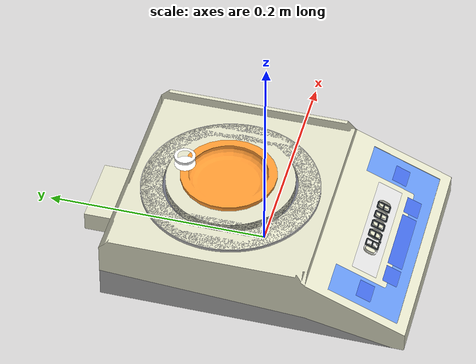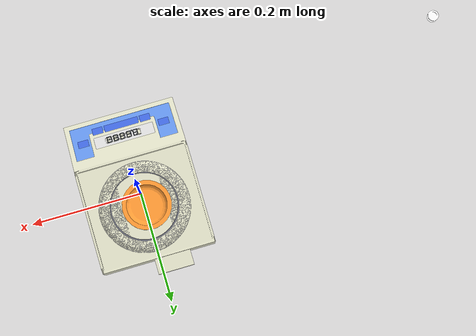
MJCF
<?xml version="1.0" encoding="utf-8"?>
<!-- Generated by scripts/generate_open_balance.py; do not edit by hand. -->
<mujoco model="balance_open">
  <asset>
    <mesh name="part_00" file="part_00.obj" inertia="shell"/>
    <mesh name="part_01" file="part_01.obj" inertia="shell"/>
    <mesh name="part_02" file="part_02.obj" inertia="shell"/>
    <mesh name="part_03" file="part_03.obj" inertia="shell"/>
    <mesh name="part_06" file="part_06.obj" inertia="shell"/>
    <mesh name="part_07" file="part_07.obj" inertia="shell"/>
    <mesh name="part_08" file="part_08.obj" inertia="shell"/>
    <mesh name="part_09" file="part_09.obj" inertia="shell"/>
    <mesh name="part_10" file="part_10.obj" inertia="shell"/>
  </asset>
  <worldbody>
    <body name="balance">
      <geom type="mesh" mesh="part_00" rgba="0.420 0.431 0.482 1" contype="0" conaffinity="0" density="0" group="1"/>
      <geom type="mesh" mesh="part_01" rgba="0.863 0.863 0.863 1" contype="0" conaffinity="0" density="0" group="1"/>
      <geom type="mesh" mesh="part_02" rgba="0.392 0.584 0.929 1" contype="0" conaffinity="0" density="0" group="1"/>
      <geom type="mesh" mesh="part_03" rgba="0.255 0.412 0.882 1" contype="0" conaffinity="0" density="0" group="1"/>
      <geom type="mesh" mesh="part_06" rgba="0.667 0.667 0.667 1" contype="0" conaffinity="0" density="0" group="1"/>
      <geom type="mesh" mesh="part_07" rgba="1.000 0.600 0.196 1" contype="0" conaffinity="0" density="0" group="1"/>
      <geom type="mesh" mesh="part_08" rgba="0.882 0.882 0.784 1" contype="0" conaffinity="0" density="0" group="1"/>
      <geom type="mesh" mesh="part_09" rgba="1.000 1.000 1.000 1" contype="0" conaffinity="0" density="0" group="1"/>
      <geom type="mesh" mesh="part_10" rgba="0.757 0.757 0.757 1" contype="0" conaffinity="0" density="0" group="1"/>
      <geom name="housing" type="box" pos="0 0 0.0290"
            size="0.1050 0.1497 0.0290" mass="6" group="3"
            rgba="0 0 0 0"/>
      <geom name="pan" type="box" pos="-0.0050 0.0310 0.0720"
            size="0.0430 0.0430 0.0050" mass="0.05" group="3"
            rgba="0.75 0.76 0.78 1"/>
      <geom name="shield_left" type="box" pos="-0.1000 0.0280 0.0765"
            size="0.0030 0.0870 0.0185" rgba="0 0 0 0" mass="0" group="3"/>
      <geom name="shield_right" type="box" pos="0.1000 0.0280 0.0765"
            size="0.0030 0.0870 0.0185" rgba="0 0 0 0" mass="0" group="3"/>
      <geom name="shield_back" type="box" pos="0.0000 0.1150 0.0765"
            size="0.1000 0.0030 0.0185" rgba="0 0 0 0" mass="0" group="3"/>
      <geom name="shield_front" type="box" pos="0.0000 -0.0590 0.0765"
            size="0.1000 0.0030 0.0185" rgba="0 0 0 0" mass="0" group="3"/>
      <geom name="seg_0_a" type="box" pos="-0.02143 -0.09731 0.04120"
            size="0.00360 0.00065 0.0004" xyaxes="1.0000 0.0032 0.0014 -0.0035 0.9195 0.3931"
            rgba="0.09 0.11 0.13 1" contype="0" conaffinity="0" group="1"/>
      <geom name="seg_0_g" type="box" pos="-0.02141 -0.10265 0.03892"
            size="0.00360 0.00065 0.0004" xyaxes="1.0000 0.0032 0.0014 -0.0035 0.9195 0.3931"
            rgba="0.09 0.11 0.13 1" contype="0" conaffinity="0" group="1"/>
      <geom name="seg_0_d" type="box" pos="-0.02139 -0.10798 0.03664"
            size="0.00360 0.00065 0.0004" xyaxes="1.0000 0.0032 0.0014 -0.0035 0.9195 0.3931"
            rgba="0.09 0.11 0.13 1" contype="0" conaffinity="0" group="1"/>
      <geom name="seg_0_f" type="box" pos="-0.02502 -0.09999 0.04005"
            size="0.00065 0.00290 0.0004" xyaxes="1.0000 0.0032 0.0014 -0.0035 0.9195 0.3931"
            rgba="0.09 0.11 0.13 1" contype="0" conaffinity="0" group="1"/>
      <geom name="seg_0_b" type="box" pos="-0.01782 -0.09997 0.04006"
            size="0.00065 0.00290 0.0004" xyaxes="1.0000 0.0032 0.0014 -0.0035 0.9195 0.3931"
            rgba="0.09 0.11 0.13 1" contype="0" conaffinity="0" group="1"/>
      <geom name="seg_0_e" type="box" pos="-0.02500 -0.10532 0.03777"
            size="0.00065 0.00290 0.0004" xyaxes="1.0000 0.0032 0.0014 -0.0035 0.9195 0.3931"
            rgba="0.09 0.11 0.13 1" contype="0" conaffinity="0" group="1"/>
      <geom name="seg_0_c" type="box" pos="-0.01780 -0.10530 0.03778"
            size="0.00065 0.00290 0.0004" xyaxes="1.0000 0.0032 0.0014 -0.0035 0.9195 0.3931"
            rgba="0.09 0.11 0.13 1" contype="0" conaffinity="0" group="1"/>
      <geom name="seg_1_a" type="box" pos="-0.00963 -0.09727 0.04121"
            size="0.00360 0.00065 0.0004" xyaxes="1.0000 0.0032 0.0014 -0.0035 0.9195 0.3931"
            rgba="0.09 0.11 0.13 1" contype="0" conaffinity="0" group="1"/>
      <geom name="seg_1_g" type="box" pos="-0.00961 -0.10261 0.03893"
            size="0.00360 0.00065 0.0004" xyaxes="1.0000 0.0032 0.0014 -0.0035 0.9195 0.3931"
            rgba="0.09 0.11 0.13 1" contype="0" conaffinity="0" group="1"/>
      <geom name="seg_1_d" type="box" pos="-0.00959 -0.10794 0.03665"
            size="0.00360 0.00065 0.0004" xyaxes="1.0000 0.0032 0.0014 -0.0035 0.9195 0.3931"
            rgba="0.09 0.11 0.13 1" contype="0" conaffinity="0" group="1"/>
      <geom name="seg_1_f" type="box" pos="-0.01322 -0.09995 0.04007"
            size="0.00065 0.00290 0.0004" xyaxes="1.0000 0.0032 0.0014 -0.0035 0.9195 0.3931"
            rgba="0.09 0.11 0.13 1" contype="0" conaffinity="0" group="1"/>
      <geom name="seg_1_b" type="box" pos="-0.00602 -0.09993 0.04008"
            size="0.00065 0.00290 0.0004" xyaxes="1.0000 0.0032 0.0014 -0.0035 0.9195 0.3931"
            rgba="0.09 0.11 0.13 1" contype="0" conaffinity="0" group="1"/>
      <geom name="seg_1_e" type="box" pos="-0.01320 -0.10529 0.03779"
            size="0.00065 0.00290 0.0004" xyaxes="1.0000 0.0032 0.0014 -0.0035 0.9195 0.3931"
            rgba="0.09 0.11 0.13 1" contype="0" conaffinity="0" group="1"/>
      <geom name="seg_1_c" type="box" pos="-0.00600 -0.10526 0.03780"
            size="0.00065 0.00290 0.0004" xyaxes="1.0000 0.0032 0.0014 -0.0035 0.9195 0.3931"
            rgba="0.09 0.11 0.13 1" contype="0" conaffinity="0" group="1"/>
      <geom name="seg_2_a" type="box" pos="0.00217 -0.09724 0.04123"
            size="0.00360 0.00065 0.0004" xyaxes="1.0000 0.0032 0.0014 -0.0035 0.9195 0.3931"
            rgba="0.09 0.11 0.13 1" contype="0" conaffinity="0" group="1"/>
      <geom name="seg_2_g" type="box" pos="0.00219 -0.10257 0.03895"
            size="0.00360 0.00065 0.0004" xyaxes="1.0000 0.0032 0.0014 -0.0035 0.9195 0.3931"
            rgba="0.09 0.11 0.13 1" contype="0" conaffinity="0" group="1"/>
      <geom name="seg_2_d" type="box" pos="0.00221 -0.10790 0.03667"
            size="0.00360 0.00065 0.0004" xyaxes="1.0000 0.0032 0.0014 -0.0035 0.9195 0.3931"
            rgba="0.09 0.11 0.13 1" contype="0" conaffinity="0" group="1"/>
      <geom name="seg_2_f" type="box" pos="-0.00142 -0.09991 0.04008"
            size="0.00065 0.00290 0.0004" xyaxes="1.0000 0.0032 0.0014 -0.0035 0.9195 0.3931"
            rgba="0.09 0.11 0.13 1" contype="0" conaffinity="0" group="1"/>
      <geom name="seg_2_b" type="box" pos="0.00578 -0.09989 0.04010"
            size="0.00065 0.00290 0.0004" xyaxes="1.0000 0.0032 0.0014 -0.0035 0.9195 0.3931"
            rgba="0.09 0.11 0.13 1" contype="0" conaffinity="0" group="1"/>
      <geom name="seg_2_e" type="box" pos="-0.00140 -0.10525 0.03780"
            size="0.00065 0.00290 0.0004" xyaxes="1.0000 0.0032 0.0014 -0.0035 0.9195 0.3931"
            rgba="0.09 0.11 0.13 1" contype="0" conaffinity="0" group="1"/>
      <geom name="seg_2_c" type="box" pos="0.00580 -0.10523 0.03782"
            size="0.00065 0.00290 0.0004" xyaxes="1.0000 0.0032 0.0014 -0.0035 0.9195 0.3931"
            rgba="0.09 0.11 0.13 1" contype="0" conaffinity="0" group="1"/>
      <geom name="seg_3_a" type="box" pos="0.01397 -0.09720 0.04125"
            size="0.00360 0.00065 0.0004" xyaxes="1.0000 0.0032 0.0014 -0.0035 0.9195 0.3931"
            rgba="0.09 0.11 0.13 1" contype="0" conaffinity="0" group="1"/>
      <geom name="seg_3_g" type="box" pos="0.01399 -0.10253 0.03897"
            size="0.00360 0.00065 0.0004" xyaxes="1.0000 0.0032 0.0014 -0.0035 0.9195 0.3931"
            rgba="0.09 0.11 0.13 1" contype="0" conaffinity="0" group="1"/>
      <geom name="seg_3_d" type="box" pos="0.01401 -0.10787 0.03669"
            size="0.00360 0.00065 0.0004" xyaxes="1.0000 0.0032 0.0014 -0.0035 0.9195 0.3931"
            rgba="0.09 0.11 0.13 1" contype="0" conaffinity="0" group="1"/>
      <geom name="seg_3_f" type="box" pos="0.01038 -0.09988 0.04010"
            size="0.00065 0.00290 0.0004" xyaxes="1.0000 0.0032 0.0014 -0.0035 0.9195 0.3931"
            rgba="0.09 0.11 0.13 1" contype="0" conaffinity="0" group="1"/>
      <geom name="seg_3_b" type="box" pos="0.01758 -0.09985 0.04011"
            size="0.00065 0.00290 0.0004" xyaxes="1.0000 0.0032 0.0014 -0.0035 0.9195 0.3931"
            rgba="0.09 0.11 0.13 1" contype="0" conaffinity="0" group="1"/>
      <geom name="seg_3_e" type="box" pos="0.01040 -0.10521 0.03782"
            size="0.00065 0.00290 0.0004" xyaxes="1.0000 0.0032 0.0014 -0.0035 0.9195 0.3931"
            rgba="0.09 0.11 0.13 1" contype="0" conaffinity="0" group="1"/>
      <geom name="seg_3_c" type="box" pos="0.01760 -0.10519 0.03783"
            size="0.00065 0.00290 0.0004" xyaxes="1.0000 0.0032 0.0014 -0.0035 0.9195 0.3931"
            rgba="0.09 0.11 0.13 1" contype="0" conaffinity="0" group="1"/>
      <geom name="seg_4_a" type="box" pos="0.02577 -0.09716 0.04126"
            size="0.00360 0.00065 0.0004" xyaxes="1.0000 0.0032 0.0014 -0.0035 0.9195 0.3931"
            rgba="0.09 0.11 0.13 1" contype="0" conaffinity="0" group="1"/>
      <geom name="seg_4_g" type="box" pos="0.02579 -0.10249 0.03898"
            size="0.00360 0.00065 0.0004" xyaxes="1.0000 0.0032 0.0014 -0.0035 0.9195 0.3931"
            rgba="0.09 0.11 0.13 1" contype="0" conaffinity="0" group="1"/>
      <geom name="seg_4_d" type="box" pos="0.02581 -0.10783 0.03670"
            size="0.00360 0.00065 0.0004" xyaxes="1.0000 0.0032 0.0014 -0.0035 0.9195 0.3931"
            rgba="0.09 0.11 0.13 1" contype="0" conaffinity="0" group="1"/>
      <geom name="seg_4_f" type="box" pos="0.02218 -0.09984 0.04012"
            size="0.00065 0.00290 0.0004" xyaxes="1.0000 0.0032 0.0014 -0.0035 0.9195 0.3931"
            rgba="0.09 0.11 0.13 1" contype="0" conaffinity="0" group="1"/>
      <geom name="seg_4_b" type="box" pos="0.02938 -0.09982 0.04013"
            size="0.00065 0.00290 0.0004" xyaxes="1.0000 0.0032 0.0014 -0.0035 0.9195 0.3931"
            rgba="0.09 0.11 0.13 1" contype="0" conaffinity="0" group="1"/>
      <geom name="seg_4_e" type="box" pos="0.02220 -0.10517 0.03784"
            size="0.00065 0.00290 0.0004" xyaxes="1.0000 0.0032 0.0014 -0.0035 0.9195 0.3931"
            rgba="0.09 0.11 0.13 1" contype="0" conaffinity="0" group="1"/>
      <geom name="seg_4_c" type="box" pos="0.02940 -0.10515 0.03785"
            size="0.00065 0.00290 0.0004" xyaxes="1.0000 0.0032 0.0014 -0.0035 0.9195 0.3931"
            rgba="0.09 0.11 0.13 1" contype="0" conaffinity="0" group="1"/>
      <geom name="point" type="box" pos="-0.01549 -0.10796 0.03665"
            size="0.00104 0.00104 0.0004" xyaxes="1.0000 0.0032 0.0014 -0.0035 0.9195 0.3931"
            rgba="0.09 0.11 0.13 1" contype="0" conaffinity="0" group="1"/>
      <site name="pan" pos="-0.0050 0.0310 0.0770"
            size="0.04 0.001" type="cylinder" rgba="0.2 0.7 0.9 0.2" group="4"/>
    </body>
  </worldbody>
</mujoco>
